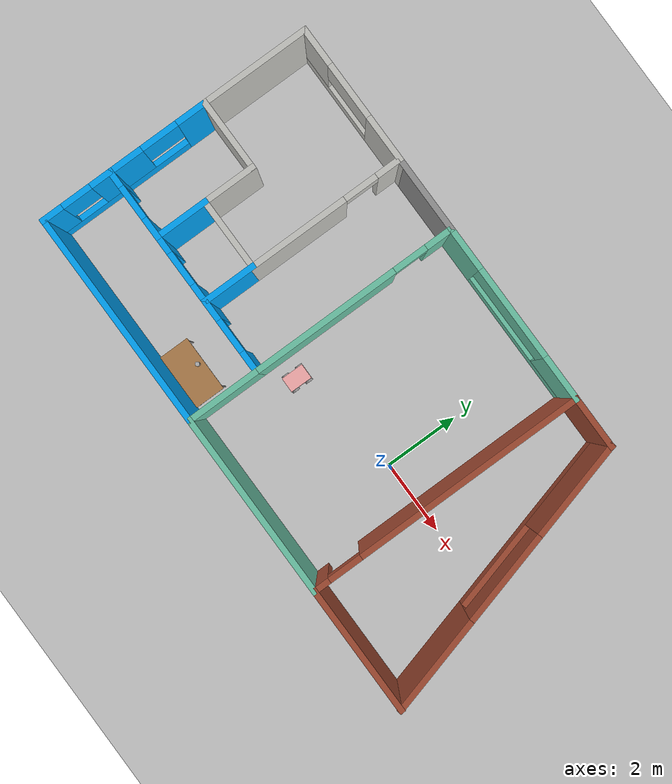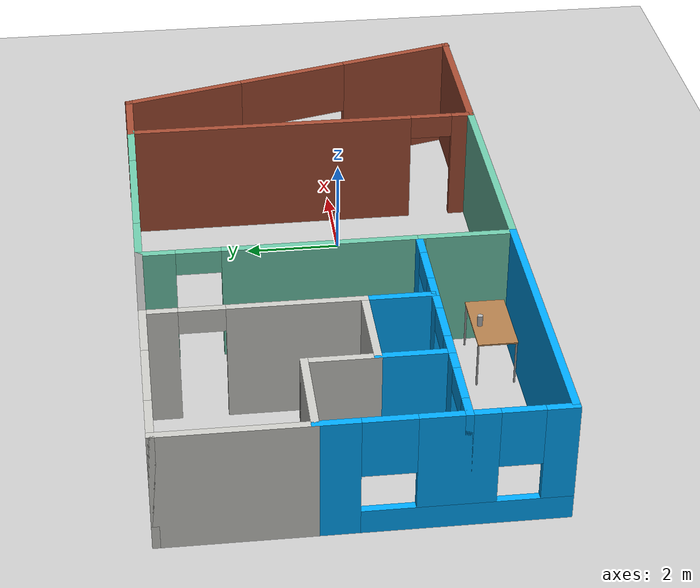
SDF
<sdf version="1.6">
 <world name="default">
  <model name="ground_plane">
   <static>1</static>
   <link name="link">
    <collision name="collision">
     <geometry><plane><normal>0 0 1</normal><size>100 100</size></plane></geometry>
     <surface>
      <contact><collide_bitmask>65535</collide_bitmask></contact>
      <friction><ode><mu>100</mu><mu2>50</mu2></ode></friction>
     </surface>
    </collision>
    <visual name="visual">
     <cast_shadows>0</cast_shadows>
     <geometry><plane><normal>0 0 1</normal><size>100 100</size></plane></geometry>
     <material>
      <script><uri>file://media/materials/scripts/gazebo.material</uri><name>Gazebo/Grey</name></script>
     </material>
    </visual>
   </link>
  </model>
  <model name="Building">
   <pose>-2.44156 0.655 0 0 -0 0</pose>
   <link name="Wall_0">
    <collision name="Wall_0_Collision">
     <geometry><box><size>2 0.15 2.5</size></box></geometry>
     <pose>0 0 1.25 0 -0 0</pose>
    </collision>
    <visual name="Wall_0_Visual">
     <pose>0 0 1.25 0 -0 0</pose>
     <geometry><box><size>2 0.15 2.5</size></box></geometry>
     <material>
      <script><uri>file://media/materials/scripts/gazebo.material</uri><name>Gazebo/Grey</name></script>
      <ambient>1 1 1 1</ambient>
     </material>
     <meta><layer>0</layer></meta>
    </visual>
    <pose>-2.18344 3.725 0 0 -0 3.14159</pose>
   </link>
   <link name="Wall_1">
    <pose>-5.03344 3.725 0 0 -0 3.14159</pose>
    <visual name="Wall_1_Visual_0">
     <pose>-1.28113 0 1.25 0 -0 0</pose>
     <geometry><box><size>1.43775 0.15 2.5</size></box></geometry>
     <material>
      <script><uri>file://media/materials/scripts/gazebo.material</uri><name>Gazebo/CeilingTiled</name></script>
      <ambient>1 1 1 1</ambient>
     </material>
     <meta><layer>0</layer></meta>
    </visual>
    <collision name="Wall_1_Collision_0">
     <geometry><box><size>1.43775 0.15 2.5</size></box></geometry>
     <pose>-1.28113 0 1.25 0 -0 0</pose>
    </collision>
    <visual name="Wall_1_Visual_1">
     <pose>0.718875 0 0.25 0 -0 0</pose>
     <geometry><box><size>2.56225 0.15 0.5</size></box></geometry>
     <material>
      <script><uri>file://media/materials/scripts/gazebo.material</uri><name>Gazebo/CeilingTiled</name></script>
      <ambient>1 1 1 1</ambient>
     </material>
     <meta><layer>0</layer></meta>
    </visual>
    <collision name="Wall_1_Collision_1">
     <geometry><box><size>2.56225 0.15 0.5</size></box></geometry>
     <pose>0.718875 0 0.25 0 -0 0</pose>
    </collision>
    <visual name="Wall_1_Visual_2">
     <pose>1.46887 0 1.5 0 -0 0</pose>
     <geometry><box><size>1.06225 0.15 2</size></box></geometry>
     <material>
      <script><uri>file://media/materials/scripts/gazebo.material</uri><name>Gazebo/CeilingTiled</name></script>
      <ambient>1 1 1 1</ambient>
     </material>
     <meta><layer>0</layer></meta>
    </visual>
    <collision name="Wall_1_Collision_2">
     <geometry><box><size>1.06225 0.15 2</size></box></geometry>
     <pose>1.46887 0 1.5 0 -0 0</pose>
    </collision>
    <visual name="Wall_1_Visual_3">
     <pose>0.18775 0 1.9 0 -0 0</pose>
     <geometry><box><size>1.5 0.15 1.2</size></box></geometry>
     <material>
      <script><uri>file://media/materials/scripts/gazebo.material</uri><name>Gazebo/CeilingTiled</name></script>
      <ambient>1 1 1 1</ambient>
     </material>
     <meta><layer>0</layer></meta>
    </visual>
    <collision name="Wall_1_Collision_3">
     <geometry><box><size>1.5 0.15 1.2</size></box></geometry>
     <pose>0.18775 0 1.9 0 -0 0</pose>
    </collision>
   </link>
   <link name="Wall_12">
    <pose>-1.25844 0.925 0 0 -0 -1.5708</pose>
    <visual name="Wall_12_Visual_0">
     <pose>-2.47859 0 1.25 0 -0 0</pose>
     <geometry><box><size>0.792825 0.15 2.5</size></box></geometry>
     <material>
      <script><uri>file://media/materials/scripts/gazebo.material</uri><name>Gazebo/Grey</name></script>
      <ambient>0.435294 0.796078 0.67451 1</ambient>
     </material>
     <meta><layer>0</layer></meta>
    </visual>
    <collision name="Wall_12_Collision_0">
     <geometry><box><size>0.792825 0.15 2.5</size></box></geometry>
     <pose>-2.47859 0 1.25 0 -0 0</pose>
    </collision>
    <visual name="Wall_12_Visual_1">
     <pose>0.846413 0 1.25 0 -0 0</pose>
     <geometry><box><size>4.05717 0.15 2.5</size></box></geometry>
     <material>
      <script><uri>file://media/materials/scripts/gazebo.material</uri><name>Gazebo/Grey</name></script>
      <ambient>0.435294 0.796078 0.67451 1</ambient>
     </material>
     <meta><layer>0</layer></meta>
    </visual>
    <collision name="Wall_12_Collision_1">
     <geometry><box><size>4.05717 0.15 2.5</size></box></geometry>
     <pose>0.846413 0 1.25 0 -0 0</pose>
    </collision>
    <visual name="Wall_12_Visual_2">
     <pose>-1.63217 0 2.25 0 -0 0</pose>
     <geometry><box><size>0.9 0.15 0.5</size></box></geometry>
     <material>
      <script><uri>file://media/materials/scripts/gazebo.material</uri><name>Gazebo/Grey</name></script>
      <ambient>0.435294 0.796078 0.67451 1</ambient>
     </material>
     <meta><layer>0</layer></meta>
    </visual>
    <collision name="Wall_12_Collision_2">
     <geometry><box><size>0.9 0.15 0.5</size></box></geometry>
     <pose>-1.63217 0 2.25 0 -0 0</pose>
    </collision>
   </link>
   <link name="Wall_14">
    <collision name="Wall_14_Collision">
     <geometry><box><size>2 0.15 2.5</size></box></geometry>
     <pose>0 0 1.25 0 -0 0</pose>
    </collision>
    <visual name="Wall_14_Visual">
     <pose>0 0 1.25 0 -0 0</pose>
     <geometry><box><size>2 0.15 2.5</size></box></geometry>
     <material>
      <script><uri>file://media/materials/scripts/gazebo.material</uri><name>Gazebo/Grey</name></script>
      <ambient>0.435294 0.796078 0.67451 1</ambient>
     </material>
     <meta><layer>0</layer></meta>
    </visual>
    <pose>-1.25844 -2.8 0 0 -0 -1.5708</pose>
   </link>
   <link name="Wall_15">
    <collision name="Wall_15_Collision">
     <geometry><box><size>5.75 0.15 2.5</size></box></geometry>
     <pose>0 0 1.25 0 -0 0</pose>
    </collision>
    <visual name="Wall_15_Visual">
     <pose>0 0 1.25 0 -0 0</pose>
     <geometry><box><size>5.75 0.15 2.5</size></box></geometry>
     <material>
      <script><uri>file://media/materials/scripts/gazebo.material</uri><name>Gazebo/Grey</name></script>
      <ambient>0 0.666667 1 1</ambient>
     </material>
     <meta><layer>0</layer></meta>
    </visual>
    <pose>-4.05844 -3.725 0 0 -0 3.14159</pose>
   </link>
   <link name="Wall_17">
    <pose>-6.95844 -1.425 0 0 -0 -1.5708</pose>
    <visual name="Wall_17_Visual_0">
     <pose>-1.93416 0 1.25 0 -0 0</pose>
     <geometry><box><size>0.881675 0.15 2.5</size></box></geometry>
     <material>
      <script><uri>file://media/materials/scripts/gazebo.material</uri><name>Gazebo/Grey</name></script>
      <ambient>0 0.666667 1 1</ambient>
     </material>
     <meta><layer>0</layer></meta>
    </visual>
    <collision name="Wall_17_Collision_0">
     <geometry><box><size>0.881675 0.15 2.5</size></box></geometry>
     <pose>-1.93416 0 1.25 0 -0 0</pose>
    </collision>
    <visual name="Wall_17_Visual_1">
     <pose>0.440838 0 0.25 0 -0 0</pose>
     <geometry><box><size>3.86833 0.15 0.5</size></box></geometry>
     <material>
      <script><uri>file://media/materials/scripts/gazebo.material</uri><name>Gazebo/Grey</name></script>
      <ambient>0 0.666667 1 1</ambient>
     </material>
     <meta><layer>0</layer></meta>
    </visual>
    <collision name="Wall_17_Collision_1">
     <geometry><box><size>3.86833 0.15 0.5</size></box></geometry>
     <pose>0.440838 0 0.25 0 -0 0</pose>
    </collision>
    <visual name="Wall_17_Visual_2">
     <pose>0.2337 0 1.5 0 -0 0</pose>
     <geometry><box><size>1.45405 0.15 2</size></box></geometry>
     <material>
      <script><uri>file://media/materials/scripts/gazebo.material</uri><name>Gazebo/Grey</name></script>
      <ambient>0 0.666667 1 1</ambient>
     </material>
     <meta><layer>0</layer></meta>
    </visual>
    <collision name="Wall_17_Collision_2">
     <geometry><box><size>1.45405 0.15 2</size></box></geometry>
     <pose>0.2337 0 1.5 0 -0 0</pose>
    </collision>
    <visual name="Wall_17_Visual_3">
     <pose>2.06786 0 1.5 0 -0 0</pose>
     <geometry><box><size>0.614275 0.15 2</size></box></geometry>
     <material>
      <script><uri>file://media/materials/scripts/gazebo.material</uri><name>Gazebo/Grey</name></script>
      <ambient>0 0.666667 1 1</ambient>
     </material>
     <meta><layer>0</layer></meta>
    </visual>
    <collision name="Wall_17_Collision_3">
     <geometry><box><size>0.614275 0.15 2</size></box></geometry>
     <pose>2.06786 0 1.5 0 -0 0</pose>
    </collision>
    <visual name="Wall_17_Visual_4">
     <pose>-0.993325 0 1.9 0 -0 0</pose>
     <geometry><box><size>1 0.15 1.2</size></box></geometry>
     <material>
      <script><uri>file://media/materials/scripts/gazebo.material</uri><name>Gazebo/Grey</name></script>
      <ambient>0 0.666667 1 1</ambient>
     </material>
     <meta><layer>0</layer></meta>
    </visual>
    <collision name="Wall_17_Collision_4">
     <geometry><box><size>1 0.15 1.2</size></box></geometry>
     <pose>-0.993325 0 1.9 0 -0 0</pose>
    </collision>
    <visual name="Wall_17_Visual_5">
     <pose>1.36072 0 1.9 0 -0 0</pose>
     <geometry><box><size>0.8 0.15 1.2</size></box></geometry>
     <material>
      <script><uri>file://media/materials/scripts/gazebo.material</uri><name>Gazebo/Grey</name></script>
      <ambient>0 0.666667 1 1</ambient>
     </material>
     <meta><layer>0</layer></meta>
    </visual>
    <collision name="Wall_17_Collision_5">
     <geometry><box><size>0.8 0.15 1.2</size></box></geometry>
     <pose>1.36072 0 1.9 0 -0 0</pose>
    </collision>
   </link>
   <link name="Wall_19">
    <pose>-4.18344 -1.825 0 0 -0 3.14159</pose>
    <visual name="Wall_19_Visual_0">
     <pose>-0.7219 0 1.25 0 -0 0</pose>
     <geometry><box><size>0.5562 0.15 2.5</size></box></geometry>
     <material>
      <script><uri>file://media/materials/scripts/gazebo.material</uri><name>Gazebo/Grey</name></script>
      <ambient>0 0.666667 1 1</ambient>
     </material>
     <meta><layer>0</layer></meta>
    </visual>
    <collision name="Wall_19_Collision_0">
     <geometry><box><size>0.5562 0.15 2.5</size></box></geometry>
     <pose>-0.7219 0 1.25 0 -0 0</pose>
    </collision>
    <visual name="Wall_19_Visual_1">
     <pose>0.7281 0 1.25 0 -0 0</pose>
     <geometry><box><size>0.5438 0.15 2.5</size></box></geometry>
     <material>
      <script><uri>file://media/materials/scripts/gazebo.material</uri><name>Gazebo/Grey</name></script>
      <ambient>0 0.666667 1 1</ambient>
     </material>
     <meta><layer>0</layer></meta>
    </visual>
    <collision name="Wall_19_Collision_1">
     <geometry><box><size>0.5438 0.15 2.5</size></box></geometry>
     <pose>0.7281 0 1.25 0 -0 0</pose>
    </collision>
    <visual name="Wall_19_Visual_2">
     <pose>0.0062 0 2.25 0 -0 0</pose>
     <geometry><box><size>0.9 0.15 0.5</size></box></geometry>
     <material>
      <script><uri>file://media/materials/scripts/gazebo.material</uri><name>Gazebo/Grey</name></script>
      <ambient>0 0.666667 1 1</ambient>
     </material>
     <meta><layer>0</layer></meta>
    </visual>
    <collision name="Wall_19_Collision_2">
     <geometry><box><size>0.9 0.15 0.5</size></box></geometry>
     <pose>0.0062 0 2.25 0 -0 0</pose>
    </collision>
   </link>
   <link name="Wall_2">
    <collision name="Wall_2_Collision">
     <geometry><box><size>3 0.15 2.5</size></box></geometry>
     <pose>0 0 1.25 0 -0 0</pose>
    </collision>
    <visual name="Wall_2_Visual">
     <pose>0 0 1.25 0 -0 0</pose>
     <geometry><box><size>3 0.15 2.5</size></box></geometry>
     <material>
      <script><uri>file://media/materials/scripts/gazebo.material</uri><name>Gazebo/CeilingTiled</name></script>
      <ambient>1 1 1 1</ambient>
     </material>
     <meta><layer>0</layer></meta>
    </visual>
    <pose>-6.95844 2.3 0 0 -0 -1.5708</pose>
   </link>
   <link name="Wall_20">
    <pose>-6.03344 -1.825 0 0 -0 3.14159</pose>
    <visual name="Wall_20_Visual_0">
     <pose>-0.701313 0 1.25 0 -0 0</pose>
     <geometry><box><size>0.597375 0.15 2.5</size></box></geometry>
     <material>
      <script><uri>file://media/materials/scripts/gazebo.material</uri><name>Gazebo/Grey</name></script>
      <ambient>0 0.666667 1 1</ambient>
     </material>
     <meta><layer>0</layer></meta>
    </visual>
    <collision name="Wall_20_Collision_0">
     <geometry><box><size>0.597375 0.15 2.5</size></box></geometry>
     <pose>-0.701313 0 1.25 0 -0 0</pose>
    </collision>
    <visual name="Wall_20_Visual_1">
     <pose>0.748687 0 1.25 0 -0 0</pose>
     <geometry><box><size>0.502625 0.15 2.5</size></box></geometry>
     <material>
      <script><uri>file://media/materials/scripts/gazebo.material</uri><name>Gazebo/Grey</name></script>
      <ambient>0 0.666667 1 1</ambient>
     </material>
     <meta><layer>0</layer></meta>
    </visual>
    <collision name="Wall_20_Collision_1">
     <geometry><box><size>0.502625 0.15 2.5</size></box></geometry>
     <pose>0.748687 0 1.25 0 -0 0</pose>
    </collision>
    <visual name="Wall_20_Visual_2">
     <pose>0.047375 0 2.25 0 -0 0</pose>
     <geometry><box><size>0.9 0.15 0.5</size></box></geometry>
     <material>
      <script><uri>file://media/materials/scripts/gazebo.material</uri><name>Gazebo/Grey</name></script>
      <ambient>0 0.666667 1 1</ambient>
     </material>
     <meta><layer>0</layer></meta>
    </visual>
    <collision name="Wall_20_Collision_2">
     <geometry><box><size>0.9 0.15 0.5</size></box></geometry>
     <pose>0.047375 0 2.25 0 -0 0</pose>
    </collision>
   </link>
   <link name="Wall_22">
    <collision name="Wall_22_Collision">
     <geometry><box><size>1.5 0.15 2.5</size></box></geometry>
     <pose>0 0 1.25 0 -0 0</pose>
    </collision>
    <visual name="Wall_22_Visual">
     <pose>0 0 1.25 0 -0 0</pose>
     <geometry><box><size>1.5 0.15 2.5</size></box></geometry>
     <material>
      <script><uri>file://media/materials/scripts/gazebo.material</uri><name>Gazebo/Grey</name></script>
      <ambient>0 0.666667 1 1</ambient>
     </material>
     <meta><layer>0</layer></meta>
    </visual>
    <pose>-5.10844 -1.15 0 0 -0 -1.5708</pose>
   </link>
   <link name="Wall_25">
    <pose>1.16656 3.725 0 0 -0 0</pose>
    <visual name="Wall_25_Visual_0">
     <pose>-1.88826 0 1.25 0 -0 0</pose>
     <geometry><box><size>1.22348 0.15 2.5</size></box></geometry>
     <material>
      <script><uri>file://media/materials/scripts/gazebo.material</uri><name>Gazebo/Grey</name></script>
      <ambient>0.435294 0.796078 0.67451 1</ambient>
     </material>
     <meta><layer>0</layer></meta>
    </visual>
    <collision name="Wall_25_Collision_0">
     <geometry><box><size>1.22348 0.15 2.5</size></box></geometry>
     <pose>-1.88826 0 1.25 0 -0 0</pose>
    </collision>
    <visual name="Wall_25_Visual_1">
     <pose>0.611737 0 0.25 0 -0 0</pose>
     <geometry><box><size>3.77652 0.15 0.5</size></box></geometry>
     <material>
      <script><uri>file://media/materials/scripts/gazebo.material</uri><name>Gazebo/Grey</name></script>
      <ambient>0.435294 0.796078 0.67451 1</ambient>
     </material>
     <meta><layer>0</layer></meta>
    </visual>
    <collision name="Wall_25_Collision_1">
     <geometry><box><size>3.77652 0.15 0.5</size></box></geometry>
     <pose>0.611737 0 0.25 0 -0 0</pose>
    </collision>
    <visual name="Wall_25_Visual_2">
     <pose>1.86174 0 1.5 0 -0 0</pose>
     <geometry><box><size>1.27652 0.15 2</size></box></geometry>
     <material>
      <script><uri>file://media/materials/scripts/gazebo.material</uri><name>Gazebo/Grey</name></script>
      <ambient>0.435294 0.796078 0.67451 1</ambient>
     </material>
     <meta><layer>0</layer></meta>
    </visual>
    <collision name="Wall_25_Collision_2">
     <geometry><box><size>1.27652 0.15 2</size></box></geometry>
     <pose>1.86174 0 1.5 0 -0 0</pose>
    </collision>
    <visual name="Wall_25_Visual_3">
     <pose>-0.026525 0 1.9 0 -0 0</pose>
     <geometry><box><size>2.5 0.15 1.2</size></box></geometry>
     <material>
      <script><uri>file://media/materials/scripts/gazebo.material</uri><name>Gazebo/Grey</name></script>
      <ambient>0.435294 0.796078 0.67451 1</ambient>
     </material>
     <meta><layer>0</layer></meta>
    </visual>
    <collision name="Wall_25_Collision_3">
     <geometry><box><size>2.5 0.15 1.2</size></box></geometry>
     <pose>-0.026525 0 1.9 0 -0 0</pose>
    </collision>
   </link>
   <link name="Wall_26">
    <pose>3.59156 0.05 0 0 -0 -1.5708</pose>
    <visual name="Wall_26_Visual_0">
     <pose>-0.649075 0 1.25 0 -0 0</pose>
     <geometry><box><size>6.20185 0.15 2.5</size></box></geometry>
     <material>
      <script><uri>file://media/materials/scripts/gazebo.material</uri><name>Gazebo/Bricks</name></script>
      <ambient>1 1 1 1</ambient>
     </material>
     <meta><layer>0</layer></meta>
    </visual>
    <collision name="Wall_26_Collision_0">
     <geometry><box><size>6.20185 0.15 2.5</size></box></geometry>
     <pose>-0.649075 0 1.25 0 -0 0</pose>
    </collision>
    <visual name="Wall_26_Visual_1">
     <pose>3.55092 0 1.25 0 -0 0</pose>
     <geometry><box><size>0.39815 0.15 2.5</size></box></geometry>
     <material>
      <script><uri>file://media/materials/scripts/gazebo.material</uri><name>Gazebo/Bricks</name></script>
      <ambient>1 1 1 1</ambient>
     </material>
     <meta><layer>0</layer></meta>
    </visual>
    <collision name="Wall_26_Collision_1">
     <geometry><box><size>0.39815 0.15 2.5</size></box></geometry>
     <pose>3.55092 0 1.25 0 -0 0</pose>
    </collision>
    <visual name="Wall_26_Visual_2">
     <pose>2.90185 0 2.25 0 -0 0</pose>
     <geometry><box><size>0.9 0.15 0.5</size></box></geometry>
     <material>
      <script><uri>file://media/materials/scripts/gazebo.material</uri><name>Gazebo/Bricks</name></script>
      <ambient>1 1 1 1</ambient>
     </material>
     <meta><layer>0</layer></meta>
    </visual>
    <collision name="Wall_26_Collision_2">
     <geometry><box><size>0.9 0.15 0.5</size></box></geometry>
     <pose>2.90185 0 2.25 0 -0 0</pose>
    </collision>
   </link>
   <link name="Wall_28">
    <collision name="Wall_28_Collision">
     <geometry><box><size>5 0.15 2.5</size></box></geometry>
     <pose>0 0 1.25 0 -0 0</pose>
    </collision>
    <visual name="Wall_28_Visual">
     <pose>0 0 1.25 0 -0 0</pose>
     <geometry><box><size>5 0.15 2.5</size></box></geometry>
     <material>
      <script><uri>file://media/materials/scripts/gazebo.material</uri><name>Gazebo/Grey</name></script>
      <ambient>0.435294 0.796078 0.67451 1</ambient>
     </material>
     <meta><layer>0</layer></meta>
    </visual>
    <pose>1.16656 -3.725 0 0 -0 0</pose>
   </link>
   <link name="Wall_29">
    <collision name="Wall_29_Collision">
     <geometry><box><size>3.5 0.15 2.5</size></box></geometry>
     <pose>0 0 1.25 0 -0 0</pose>
    </collision>
    <visual name="Wall_29_Visual">
     <pose>0 0 1.25 0 -0 0</pose>
     <geometry><box><size>3.5 0.15 2.5</size></box></geometry>
     <material>
      <script><uri>file://media/materials/scripts/gazebo.material</uri><name>Gazebo/Bricks</name></script>
      <ambient>1 1 1 1</ambient>
     </material>
     <meta><layer>0</layer></meta>
    </visual>
    <pose>5.26656 -3.725 0 0 -0 0</pose>
   </link>
   <link name="Wall_3">
    <collision name="Wall_3_Collision">
     <geometry><box><size>2 0.15 2.5</size></box></geometry>
     <pose>0 0 1.25 0 -0 0</pose>
    </collision>
    <visual name="Wall_3_Visual">
     <pose>0 0 1.25 0 -0 0</pose>
     <geometry><box><size>2 0.15 2.5</size></box></geometry>
     <material>
      <script><uri>file://media/materials/scripts/gazebo.material</uri><name>Gazebo/CeilingTiled</name></script>
      <ambient>1 1 1 1</ambient>
     </material>
     <meta><layer>0</layer></meta>
    </visual>
    <pose>-6.03344 0.875 0 0 -0 0</pose>
   </link>
   <link name="Wall_30">
    <pose>5.94156 0 0 0 -0 1.83307</pose>
    <visual name="Wall_30_Visual_0">
     <pose>-2.60007 0 1.25 0 -0 0</pose>
     <geometry><box><size>2.66364 0.15 2.5</size></box></geometry>
     <material>
      <script><uri>file://media/materials/scripts/gazebo.material</uri><name>Gazebo/Bricks</name></script>
      <ambient>1 1 1 1</ambient>
     </material>
     <meta><layer>0</layer></meta>
    </visual>
    <collision name="Wall_30_Collision_0">
     <geometry><box><size>2.66364 0.15 2.5</size></box></geometry>
     <pose>-2.60007 0 1.25 0 -0 0</pose>
    </collision>
    <visual name="Wall_30_Visual_1">
     <pose>1.33182 0 0.25 0 -0 0</pose>
     <geometry><box><size>5.20015 0.15 0.5</size></box></geometry>
     <material>
      <script><uri>file://media/materials/scripts/gazebo.material</uri><name>Gazebo/Bricks</name></script>
      <ambient>1 1 1 1</ambient>
     </material>
     <meta><layer>0</layer></meta>
    </visual>
    <collision name="Wall_30_Collision_1">
     <geometry><box><size>5.20015 0.15 0.5</size></box></geometry>
     <pose>1.33182 0 0.25 0 -0 0</pose>
    </collision>
    <visual name="Wall_30_Visual_2">
     <pose>2.58182 0 1.5 0 -0 0</pose>
     <geometry><box><size>2.70015 0.15 2</size></box></geometry>
     <material>
      <script><uri>file://media/materials/scripts/gazebo.material</uri><name>Gazebo/Bricks</name></script>
      <ambient>1 1 1 1</ambient>
     </material>
     <meta><layer>0</layer></meta>
    </visual>
    <collision name="Wall_30_Collision_2">
     <geometry><box><size>2.70015 0.15 2</size></box></geometry>
     <pose>2.58182 0 1.5 0 -0 0</pose>
    </collision>
    <visual name="Wall_30_Visual_3">
     <pose>-0.018252 0 1.9 0 -0 0</pose>
     <geometry><box><size>2.5 0.15 1.2</size></box></geometry>
     <material>
      <script><uri>file://media/materials/scripts/gazebo.material</uri><name>Gazebo/Bricks</name></script>
      <ambient>1 1 1 1</ambient>
     </material>
     <meta><layer>0</layer></meta>
    </visual>
    <collision name="Wall_30_Collision_3">
     <geometry><box><size>2.5 0.15 1.2</size></box></geometry>
     <pose>-0.018252 0 1.9 0 -0 0</pose>
    </collision>
   </link>
   <link name="Wall_35">
    <collision name="Wall_35_Collision">
     <geometry><box><size>1.5 0.15 2.5</size></box></geometry>
     <pose>0 0 1.25 0 -0 0</pose>
    </collision>
    <visual name="Wall_35_Visual">
     <pose>0 0 1.25 0 -0 0</pose>
     <geometry><box><size>1.5 0.15 2.5</size></box></geometry>
     <material>
      <script><uri>file://media/materials/scripts/gazebo.material</uri><name>Gazebo/Bricks</name></script>
      <ambient>1 1 1 1</ambient>
     </material>
     <meta><layer>0</layer></meta>
    </visual>
    <pose>4.26656 3.725 0 0 -0 3.14159</pose>
   </link>
   <link name="Wall_4">
    <collision name="Wall_4_Collision">
     <geometry><box><size>1.5 0.15 2.5</size></box></geometry>
     <pose>0 0 1.25 0 -0 0</pose>
    </collision>
    <visual name="Wall_4_Visual">
     <pose>0 0 1.25 0 -0 0</pose>
     <geometry><box><size>1.5 0.15 2.5</size></box></geometry>
     <material>
      <script><uri>file://media/materials/scripts/gazebo.material</uri><name>Gazebo/CeilingTiled</name></script>
      <ambient>1 1 1 1</ambient>
     </material>
     <meta><layer>0</layer></meta>
    </visual>
    <pose>-5.10844 0.2 0 0 -0 -1.5708</pose>
   </link>
   <link name="Wall_5">
    <collision name="Wall_5_Collision">
     <geometry><box><size>2 0.15 2.5</size></box></geometry>
     <pose>0 0 1.25 0 -0 0</pose>
    </collision>
    <visual name="Wall_5_Visual">
     <pose>0 0 1.25 0 -0 0</pose>
     <geometry><box><size>2 0.15 2.5</size></box></geometry>
     <material>
      <script><uri>file://media/materials/scripts/gazebo.material</uri><name>Gazebo/CeilingTiled</name></script>
      <ambient>1 1 1 1</ambient>
     </material>
     <meta><layer>0</layer></meta>
    </visual>
    <pose>-4.18344 -0.475 0 0 -0 0</pose>
   </link>
   <link name="Wall_6">
    <pose>-3.25844 1.575 0 0 -0 1.5708</pose>
    <visual name="Wall_6_Visual_0">
     <pose>-0.769963 0 1.25 0 -0 0</pose>
     <geometry><box><size>2.71007 0.15 2.5</size></box></geometry>
     <material>
      <script><uri>file://media/materials/scripts/gazebo.material</uri><name>Gazebo/CeilingTiled</name></script>
      <ambient>1 1 1 1</ambient>
     </material>
     <meta><layer>0</layer></meta>
    </visual>
    <collision name="Wall_6_Collision_0">
     <geometry><box><size>2.71007 0.15 2.5</size></box></geometry>
     <pose>-0.769963 0 1.25 0 -0 0</pose>
    </collision>
    <visual name="Wall_6_Visual_1">
     <pose>1.80504 0 1.25 0 -0 0</pose>
     <geometry><box><size>0.639925 0.15 2.5</size></box></geometry>
     <material>
      <script><uri>file://media/materials/scripts/gazebo.material</uri><name>Gazebo/CeilingTiled</name></script>
      <ambient>1 1 1 1</ambient>
     </material>
     <meta><layer>0</layer></meta>
    </visual>
    <collision name="Wall_6_Collision_1">
     <geometry><box><size>0.639925 0.15 2.5</size></box></geometry>
     <pose>1.80504 0 1.25 0 -0 0</pose>
    </collision>
    <visual name="Wall_6_Visual_2">
     <pose>1.03507 0 2.25 0 -0 0</pose>
     <geometry><box><size>0.9 0.15 0.5</size></box></geometry>
     <material>
      <script><uri>file://media/materials/scripts/gazebo.material</uri><name>Gazebo/CeilingTiled</name></script>
      <ambient>1 1 1 1</ambient>
     </material>
     <meta><layer>0</layer></meta>
    </visual>
    <collision name="Wall_6_Collision_2">
     <geometry><box><size>0.9 0.15 0.5</size></box></geometry>
     <pose>1.03507 0 2.25 0 -0 0</pose>
    </collision>
   </link>
   <link name="Wall_8">
    <collision name="Wall_8_Collision">
     <geometry><box><size>1.5 0.15 2.5</size></box></geometry>
     <pose>0 0 1.25 0 -0 0</pose>
    </collision>
    <visual name="Wall_8_Visual">
     <pose>0 0 1.25 0 -0 0</pose>
     <geometry><box><size>1.5 0.15 2.5</size></box></geometry>
     <material>
      <script><uri>file://media/materials/scripts/gazebo.material</uri><name>Gazebo/Grey</name></script>
      <ambient>0 0.666667 1 1</ambient>
     </material>
     <meta><layer>0</layer></meta>
    </visual>
    <pose>-3.25844 -1.15 0 0 -0 -1.5708</pose>
   </link>
   <link name="Wall_9">
    <pose>-2.33344 -1.825 0 0 -0 0</pose>
    <visual name="Wall_9_Visual_0">
     <pose>-0.694287 0 1.25 0 -0 0</pose>
     <geometry><box><size>0.611425 0.15 2.5</size></box></geometry>
     <material>
      <script><uri>file://media/materials/scripts/gazebo.material</uri><name>Gazebo/Grey</name></script>
      <ambient>0 0.666667 1 1</ambient>
     </material>
     <meta><layer>0</layer></meta>
    </visual>
    <collision name="Wall_9_Collision_0">
     <geometry><box><size>0.611425 0.15 2.5</size></box></geometry>
     <pose>-0.694287 0 1.25 0 -0 0</pose>
    </collision>
    <visual name="Wall_9_Visual_1">
     <pose>0.755713 0 1.25 0 -0 0</pose>
     <geometry><box><size>0.488575 0.15 2.5</size></box></geometry>
     <material>
      <script><uri>file://media/materials/scripts/gazebo.material</uri><name>Gazebo/Grey</name></script>
      <ambient>0 0.666667 1 1</ambient>
     </material>
     <meta><layer>0</layer></meta>
    </visual>
    <collision name="Wall_9_Collision_1">
     <geometry><box><size>0.488575 0.15 2.5</size></box></geometry>
     <pose>0.755713 0 1.25 0 -0 0</pose>
    </collision>
    <visual name="Wall_9_Visual_2">
     <pose>0.061425 0 2.25 0 -0 0</pose>
     <geometry><box><size>0.9 0.15 0.5</size></box></geometry>
     <material>
      <script><uri>file://media/materials/scripts/gazebo.material</uri><name>Gazebo/Grey</name></script>
      <ambient>0 0.666667 1 1</ambient>
     </material>
     <meta><layer>0</layer></meta>
    </visual>
    <collision name="Wall_9_Collision_2">
     <geometry><box><size>0.9 0.15 0.5</size></box></geometry>
     <pose>0.061425 0 2.25 0 -0 0</pose>
    </collision>
   </link>
   <static>1</static>
  </model>
  <model name="table">
   <static>1</static>
   <link name="link">
    <collision name="surface">
     <pose>0 0 1 0 -0 0</pose>
     <geometry><box><size>1.5 0.8 0.03</size></box></geometry>
     <surface><friction><ode><mu>0.6</mu><mu2>0.6</mu2></ode></friction></surface>
    </collision>
    <visual name="visual1">
     <pose>0 0 1 0 -0 0</pose>
     <geometry><box><size>1.5 0.8 0.03</size></box></geometry>
     <material>
      <script><uri>file://media/materials/scripts/gazebo.material</uri><name>Gazebo/Wood</name></script>
     </material>
    </visual>
    <collision name="front_left_leg">
     <pose>0.68 0.38 0.5 0 -0 0</pose>
     <geometry><cylinder><radius>0.02</radius><length>1</length></cylinder></geometry>
    </collision>
    <visual name="front_left_leg">
     <pose>0.68 0.38 0.5 0 -0 0</pose>
     <geometry><cylinder><radius>0.02</radius><length>1</length></cylinder></geometry>
     <material>
      <script><uri>file://media/materials/scripts/gazebo.material</uri><name>Gazebo/Grey</name></script>
     </material>
    </visual>
    <collision name="front_right_leg">
     <pose>0.68 -0.38 0.5 0 -0 0</pose>
     <geometry><cylinder><radius>0.02</radius><length>1</length></cylinder></geometry>
    </collision>
    <visual name="front_right_leg">
     <pose>0.68 -0.38 0.5 0 -0 0</pose>
     <geometry><cylinder><radius>0.02</radius><length>1</length></cylinder></geometry>
     <material>
      <script><uri>file://media/materials/scripts/gazebo.material</uri><name>Gazebo/Grey</name></script>
     </material>
    </visual>
    <collision name="back_right_leg">
     <pose>-0.68 -0.38 0.5 0 -0 0</pose>
     <geometry><cylinder><radius>0.02</radius><length>1</length></cylinder></geometry>
    </collision>
    <visual name="back_right_leg">
     <pose>-0.68 -0.38 0.5 0 -0 0</pose>
     <geometry><cylinder><radius>0.02</radius><length>1</length></cylinder></geometry>
     <material>
      <script><uri>file://media/materials/scripts/gazebo.material</uri><name>Gazebo/Grey</name></script>
     </material>
    </visual>
    <collision name="back_left_leg">
     <pose>-0.68 0.38 0.5 0 -0 0</pose>
     <geometry><cylinder><radius>0.02</radius><length>1</length></cylinder></geometry>
    </collision>
    <visual name="back_left_leg">
     <pose>-0.68 0.38 0.5 0 -0 0</pose>
     <geometry><cylinder><radius>0.02</radius><length>1</length></cylinder></geometry>
     <material>
      <script><uri>file://media/materials/scripts/gazebo.material</uri><name>Gazebo/Grey</name></script>
     </material>
    </visual>
   </link>
   <pose>-4.67365 -2.51457 0 0 -0 0</pose>
  </model>
  <model name="beer">
   <link name="link">
    <pose>0 0 0.115 0 -0 0</pose>
    <inertial>
     <mass>0.39</mass>
     <inertia><ixx>0.00058</ixx><ixy>0</ixy><ixz>0</ixz><iyy>0.00058</iyy><iyz>0</iyz><izz>0.00019</izz></inertia>
    </inertial>
    <collision name="collision">
     <geometry><cylinder><radius>0.055</radius><length>0.23</length></cylinder></geometry>
    </collision>
    <visual name="visual">
     <geometry><cylinder><radius>0.055</radius><length>0.23</length></cylinder></geometry>
     <material>
      <script>
       <uri>model://beer/materials/scripts</uri>
       <uri>model://beer/materials/textures</uri>
       <name>Beer/Diffuse</name>
      </script>
     </material>
    </visual>
   </link>
   <pose>-4.75209 -2.26665 1.015 0 -1e-06 0.000827</pose>
  </model>
  <model name="Robot">
   <link name="link_0">
    <inertial>
     <mass>1</mass>
     <inertia>
      <ixx>0.166667</ixx>
      <ixy>0</ixy>
      <ixz>0</ixz>
      <iyy>0.166667</iyy>
      <iyz>0</iyz>
      <izz>0.166667</izz>
     </inertia>
    </inertial>
    <visual name="visual">
     <pose>0 0 0.25 0 -0 0</pose>
     <geometry><box><size>0.4 0.6 0.5</size></box></geometry>
     <material>
      <lighting>1</lighting>
      <script><uri>file://media/materials/scripts/gazebo.material</uri><name>Gazebo/Grey</name></script>
      <shader type="vertex"><normal_map>__default__</normal_map></shader>
      <ambient>1 0.3 0.3 1</ambient>
      <diffuse>1 0.7 0.7 1</diffuse>
      <specular>1 0.01 0.01 1</specular>
      <emissive>0 0 0 1</emissive>
     </material>
    </visual>
    <collision name="collision">
     <pose>0 0 0.25 0 -0 0</pose>
     <geometry><box><size>0.4 0.6 0.5</size></box></geometry>
     <surface>
      <friction>
       <ode><mu>1</mu><mu2>1</mu2><fdir1>0 0 0</fdir1><slip1>0</slip1><slip2>0</slip2></ode>
       <torsional>
        <coefficient>1</coefficient>
        <patch_radius>0</patch_radius>
        <surface_radius>0</surface_radius>
        <use_patch_radius>1</use_patch_radius>
        <ode><slip>0</slip></ode>
       </torsional>
      </friction>
      <bounce><restitution_coefficient>0</restitution_coefficient><threshold>1e+06</threshold></bounce>
      <contact>
       <collide_without_contact>0</collide_without_contact>
       <collide_without_contact_bitmask>1</collide_without_contact_bitmask>
       <collide_bitmask>1</collide_bitmask>
       <ode>
        <soft_cfm>0</soft_cfm>
        <soft_erp>0.2</soft_erp>
        <kp>1e+13</kp>
        <kd>1</kd>
        <max_vel>0.01</max_vel>
        <min_depth>0</min_depth>
       </ode>
       <bullet>
        <split_impulse>1</split_impulse>
        <split_impulse_penetration_threshold>-0.01</split_impulse_penetration_threshold>
        <soft_cfm>0</soft_cfm>
        <soft_erp>0.2</soft_erp>
        <kp>1e+13</kp>
        <kd>1</kd>
       </bullet>
      </contact>
     </surface>
    </collision>
   </link>
   <link name="link_1_clone">
    <inertial>
     <mass>1</mass>
     <inertia><ixx>0.145833</ixx><ixy>0</ixy><ixz>0</ixz><iyy>0.145833</iyy><iyz>0</iyz><izz>0.125</izz></inertia>
    </inertial>
    <pose>-0.225001 0.2 0 1.5708 -0 1.5708</pose>
    <visual name="visual">
     <geometry><cylinder><radius>0.1</radius><length>0.05</length></cylinder></geometry>
     <material>
      <lighting>1</lighting>
      <script><uri>file://media/materials/scripts/gazebo.material</uri><name>Gazebo/Grey</name></script>
      <shader type="vertex"><normal_map>__default__</normal_map></shader>
      <ambient>0.3 0.3 0.3 1</ambient>
      <diffuse>0.7 0.7 0.7 1</diffuse>
      <specular>0.01 0.01 0.01 1</specular>
      <emissive>0 0 0 1</emissive>
     </material>
    </visual>
    <collision name="collision">
     <geometry><cylinder><radius>0.1</radius><length>0.05</length></cylinder></geometry>
     <surface>
      <friction>
       <ode><mu>1</mu><mu2>1</mu2><fdir1>0 0 0</fdir1><slip1>0</slip1><slip2>0</slip2></ode>
       <torsional>
        <coefficient>1</coefficient>
        <patch_radius>0</patch_radius>
        <surface_radius>0</surface_radius>
        <use_patch_radius>1</use_patch_radius>
        <ode><slip>0</slip></ode>
       </torsional>
      </friction>
      <bounce><restitution_coefficient>0</restitution_coefficient><threshold>1e+06</threshold></bounce>
      <contact>
       <collide_without_contact>0</collide_without_contact>
       <collide_without_contact_bitmask>1</collide_without_contact_bitmask>
       <collide_bitmask>1</collide_bitmask>
       <ode>
        <soft_cfm>0</soft_cfm>
        <soft_erp>0.2</soft_erp>
        <kp>1e+13</kp>
        <kd>1</kd>
        <max_vel>0.01</max_vel>
        <min_depth>0</min_depth>
       </ode>
       <bullet>
        <split_impulse>1</split_impulse>
        <split_impulse_penetration_threshold>-0.01</split_impulse_penetration_threshold>
        <soft_cfm>0</soft_cfm>
        <soft_erp>0.2</soft_erp>
        <kp>1e+13</kp>
        <kd>1</kd>
       </bullet>
      </contact>
     </surface>
    </collision>
   </link>
   <link name="link_1_clone_0">
    <inertial>
     <mass>1</mass>
     <inertia><ixx>0.145833</ixx><ixy>0</ixy><ixz>0</ixz><iyy>0.145833</iyy><iyz>0</iyz><izz>0.125</izz></inertia>
    </inertial>
    <pose>0.225001 0.2 -0 1.5708 -0 1.5708</pose>
    <visual name="visual">
     <geometry><cylinder><radius>0.1</radius><length>0.05</length></cylinder></geometry>
     <material>
      <lighting>1</lighting>
      <script><uri>file://media/materials/scripts/gazebo.material</uri><name>Gazebo/Grey</name></script>
      <shader type="vertex"><normal_map>__default__</normal_map></shader>
      <ambient>0.3 0.3 0.3 1</ambient>
      <diffuse>0.7 0.7 0.7 1</diffuse>
      <specular>0.01 0.01 0.01 1</specular>
      <emissive>0 0 0 1</emissive>
     </material>
    </visual>
    <collision name="collision">
     <geometry><cylinder><radius>0.1</radius><length>0.05</length></cylinder></geometry>
     <surface>
      <friction>
       <ode><mu>1</mu><mu2>1</mu2><fdir1>0 0 0</fdir1><slip1>0</slip1><slip2>0</slip2></ode>
       <torsional>
        <coefficient>1</coefficient>
        <patch_radius>0</patch_radius>
        <surface_radius>0</surface_radius>
        <use_patch_radius>1</use_patch_radius>
        <ode><slip>0</slip></ode>
       </torsional>
      </friction>
      <bounce><restitution_coefficient>0</restitution_coefficient><threshold>1e+06</threshold></bounce>
      <contact>
       <collide_without_contact>0</collide_without_contact>
       <collide_without_contact_bitmask>1</collide_without_contact_bitmask>
       <collide_bitmask>1</collide_bitmask>
       <ode>
        <soft_cfm>0</soft_cfm>
        <soft_erp>0.2</soft_erp>
        <kp>1e+13</kp>
        <kd>1</kd>
        <max_vel>0.01</max_vel>
        <min_depth>0</min_depth>
       </ode>
       <bullet>
        <split_impulse>1</split_impulse>
        <split_impulse_penetration_threshold>-0.01</split_impulse_penetration_threshold>
        <soft_cfm>0</soft_cfm>
        <soft_erp>0.2</soft_erp>
        <kp>1e+13</kp>
        <kd>1</kd>
       </bullet>
      </contact>
     </surface>
    </collision>
   </link>
   <link name="link_1_clone_1">
    <inertial>
     <mass>1</mass>
     <inertia><ixx>0.145833</ixx><ixy>0</ixy><ixz>0</ixz><iyy>0.145833</iyy><iyz>0</iyz><izz>0.125</izz></inertia>
    </inertial>
    <pose>0.225001 -0.2 -0 1.5708 -0 1.5708</pose>
    <visual name="visual">
     <geometry><cylinder><radius>0.1</radius><length>0.05</length></cylinder></geometry>
     <material>
      <lighting>1</lighting>
      <script><uri>file://media/materials/scripts/gazebo.material</uri><name>Gazebo/Grey</name></script>
      <shader type="vertex"><normal_map>__default__</normal_map></shader>
      <ambient>0.3 0.3 0.3 1</ambient>
      <diffuse>0.7 0.7 0.7 1</diffuse>
      <specular>0.01 0.01 0.01 1</specular>
      <emissive>0 0 0 1</emissive>
     </material>
    </visual>
    <collision name="collision">
     <geometry><cylinder><radius>0.1</radius><length>0.05</length></cylinder></geometry>
     <surface>
      <friction>
       <ode><mu>1</mu><mu2>1</mu2><fdir1>0 0 0</fdir1><slip1>0</slip1><slip2>0</slip2></ode>
       <torsional>
        <coefficient>1</coefficient>
        <patch_radius>0</patch_radius>
        <surface_radius>0</surface_radius>
        <use_patch_radius>1</use_patch_radius>
        <ode><slip>0</slip></ode>
       </torsional>
      </friction>
      <bounce><restitution_coefficient>0</restitution_coefficient><threshold>1e+06</threshold></bounce>
      <contact>
       <collide_without_contact>0</collide_without_contact>
       <collide_without_contact_bitmask>1</collide_without_contact_bitmask>
       <collide_bitmask>1</collide_bitmask>
       <ode>
        <soft_cfm>0</soft_cfm>
        <soft_erp>0.2</soft_erp>
        <kp>1e+13</kp>
        <kd>1</kd>
        <max_vel>0.01</max_vel>
        <min_depth>0</min_depth>
       </ode>
       <bullet>
        <split_impulse>1</split_impulse>
        <split_impulse_penetration_threshold>-0.01</split_impulse_penetration_threshold>
        <soft_cfm>0</soft_cfm>
        <soft_erp>0.2</soft_erp>
        <kp>1e+13</kp>
        <kd>1</kd>
       </bullet>
      </contact>
     </surface>
    </collision>
   </link>
   <link name="link_1_clone_clone">
    <inertial>
     <mass>1</mass>
     <inertia><ixx>0.145833</ixx><ixy>0</ixy><ixz>0</ixz><iyy>0.145833</iyy><iyz>0</iyz><izz>0.125</izz></inertia>
    </inertial>
    <pose>-0.225001 -0.2 0 1.5708 -0 1.5708</pose>
    <visual name="visual">
     <geometry><cylinder><radius>0.1</radius><length>0.05</length></cylinder></geometry>
     <material>
      <lighting>1</lighting>
      <script><uri>file://media/materials/scripts/gazebo.material</uri><name>Gazebo/Grey</name></script>
      <shader type="vertex"><normal_map>__default__</normal_map></shader>
      <ambient>0.3 0.3 0.3 1</ambient>
      <diffuse>0.7 0.7 0.7 1</diffuse>
      <specular>0.01 0.01 0.01 1</specular>
      <emissive>0 0 0 1</emissive>
     </material>
    </visual>
    <collision name="collision">
     <geometry><cylinder><radius>0.1</radius><length>0.05</length></cylinder></geometry>
     <surface>
      <friction>
       <ode><mu>1</mu><mu2>1</mu2><fdir1>0 0 0</fdir1><slip1>0</slip1><slip2>0</slip2></ode>
       <torsional>
        <coefficient>1</coefficient>
        <patch_radius>0</patch_radius>
        <surface_radius>0</surface_radius>
        <use_patch_radius>1</use_patch_radius>
        <ode><slip>0</slip></ode>
       </torsional>
      </friction>
      <bounce><restitution_coefficient>0</restitution_coefficient><threshold>1e+06</threshold></bounce>
      <contact>
       <collide_without_contact>0</collide_without_contact>
       <collide_without_contact_bitmask>1</collide_without_contact_bitmask>
       <collide_bitmask>1</collide_bitmask>
       <ode>
        <soft_cfm>0</soft_cfm>
        <soft_erp>0.2</soft_erp>
        <kp>1e+13</kp>
        <kd>1</kd>
        <max_vel>0.01</max_vel>
        <min_depth>0</min_depth>
       </ode>
       <bullet>
        <split_impulse>1</split_impulse>
        <split_impulse_penetration_threshold>-0.01</split_impulse_penetration_threshold>
        <soft_cfm>0</soft_cfm>
        <soft_erp>0.2</soft_erp>
        <kp>1e+13</kp>
        <kd>1</kd>
       </bullet>
      </contact>
     </surface>
    </collision>
   </link>
   <joint name="link_0_JOINT_0" type="revolute">
    <parent>link_0</parent>
    <child>link_1_clone</child>
    <axis>
     <xyz>0 0 1</xyz>
     <use_parent_model_frame>0</use_parent_model_frame>
     <limit>
      <lower>-1.79769e+308</lower>
      <upper>1.79769e+308</upper>
      <effort>-1</effort>
      <velocity>-1</velocity>
     </limit>
     <dynamics>
      <spring_reference>0</spring_reference>
      <spring_stiffness>0</spring_stiffness>
      <damping>0</damping>
      <friction>0</friction>
     </dynamics>
    </axis>
    <physics>
     <ode><limit><cfm>0</cfm><erp>0.2</erp></limit><suspension><cfm>0</cfm><erp>0.2</erp></suspension></ode>
    </physics>
   </joint>
   <joint name="link_0_JOINT_1" type="revolute">
    <parent>link_0</parent>
    <child>link_1_clone_0</child>
    <axis>
     <xyz>0 0 1</xyz>
     <use_parent_model_frame>0</use_parent_model_frame>
     <limit>
      <lower>-1.79769e+308</lower>
      <upper>1.79769e+308</upper>
      <effort>-1</effort>
      <velocity>-1</velocity>
     </limit>
     <dynamics>
      <spring_reference>0</spring_reference>
      <spring_stiffness>0</spring_stiffness>
      <damping>0</damping>
      <friction>0</friction>
     </dynamics>
    </axis>
    <physics>
     <ode><limit><cfm>0</cfm><erp>0.2</erp></limit><suspension><cfm>0</cfm><erp>0.2</erp></suspension></ode>
    </physics>
   </joint>
   <joint name="link_0_JOINT_2" type="revolute">
    <parent>link_0</parent>
    <child>link_1_clone_1</child>
    <axis>
     <xyz>0 0 1</xyz>
     <use_parent_model_frame>0</use_parent_model_frame>
     <limit>
      <lower>-1.79769e+308</lower>
      <upper>1.79769e+308</upper>
      <effort>-1</effort>
      <velocity>-1</velocity>
     </limit>
     <dynamics>
      <spring_reference>0</spring_reference>
      <spring_stiffness>0</spring_stiffness>
      <damping>0</damping>
      <friction>0</friction>
     </dynamics>
    </axis>
    <physics>
     <ode><limit><cfm>0</cfm><erp>0.2</erp></limit><suspension><cfm>0</cfm><erp>0.2</erp></suspension></ode>
    </physics>
   </joint>
   <joint name="link_0_JOINT_4" type="revolute">
    <parent>link_0</parent>
    <child>link_1_clone_clone</child>
    <axis>
     <xyz>0 0 1</xyz>
     <use_parent_model_frame>0</use_parent_model_frame>
     <limit>
      <lower>-1.79769e+308</lower>
      <upper>1.79769e+308</upper>
      <effort>-1</effort>
      <velocity>-1</velocity>
     </limit>
     <dynamics>
      <spring_reference>0</spring_reference>
      <spring_stiffness>0</spring_stiffness>
      <damping>0</damping>
      <friction>0</friction>
     </dynamics>
    </axis>
    <physics>
     <ode><limit><cfm>0</cfm><erp>0.2</erp></limit><suspension><cfm>0</cfm><erp>0.2</erp></suspension></ode>
    </physics>
   </joint>
   <static>0</static>
   <pose>-3.09119 -0.561614 0.099981 -7e-06 -6e-06 -0.008107</pose>
  </model>
 </world>
</sdf>
